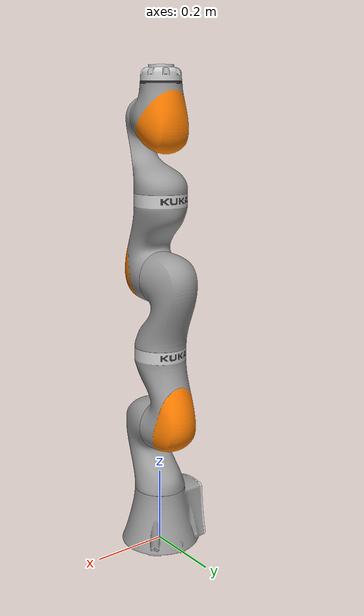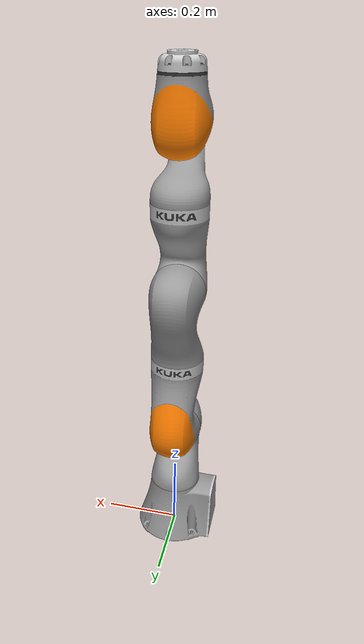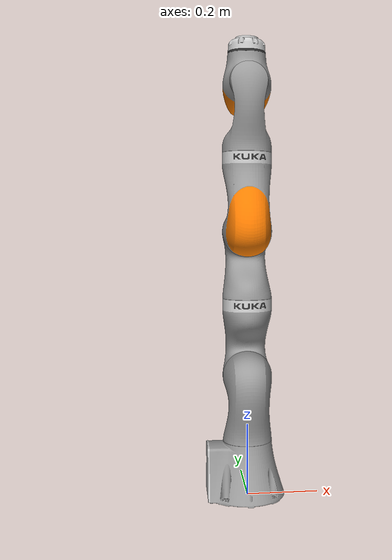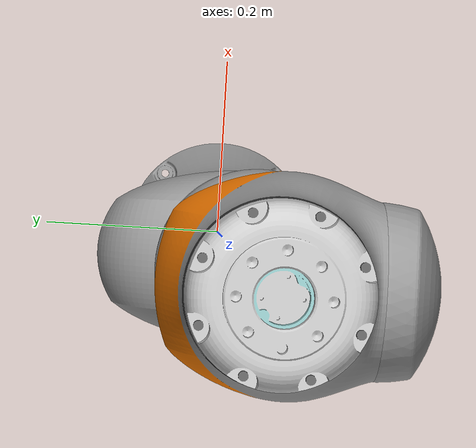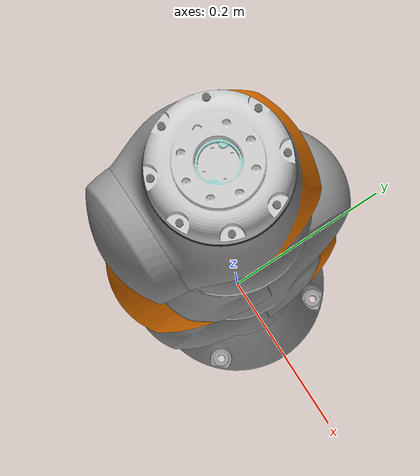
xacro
<?xml version="1.0"?>

<!-- top level -->
<robot name="iiwa7" xmlns:xacro="http://www.ros.org/wiki/xacro">

    <!-- include the iiwa macro and controller -->
    <xacro:include filename="$(find lbr_description)/urdf/iiwa7/iiwa7.urdf.xacro" />
    <xacro:include filename="$(find lbr_description)/gazebo/lbr_gazebo.xacro" />
    <xacro:include filename="$(find lbr_description)/ros2_control/lbr_system_interface.xacro" />

    <!-- arguments -->
    <xacro:arg name="robot_name" default="lbr" />
    <xacro:arg name="mode" default="mock" />
    <xacro:arg
        name="joint_limits_path"
        default="$(find lbr_description)/urdf/iiwa7/joint_limits.yaml" />
    <xacro:arg
        name="system_config_path"
        default="$(find lbr_description)/ros2_control/lbr_system_config.yaml" />
    <xacro:arg
        name="initial_joint_positions_path"
        default="$(find lbr_description)/ros2_control/initial_joint_positions.yaml" />

    <!-- KDL requires a link without inertia / Gazebo requires a connection to world link or robot
    will tipple https://github.com/lbr-stack/lbr_fri_ros2_stack/issues/230 -->
    <link name="world" />

    <joint name="$(arg robot_name)_world_joint" type="fixed">
        <parent link="world" />
        <child link="$(arg robot_name)_link_0" />
    </joint>

    <!-- macros for gazebo / mock / hardware -->
    <xacro:lbr_gazebo robot_name="$(arg robot_name)" />
    <xacro:lbr_system_interface
        robot_name="$(arg robot_name)"
        mode="$(arg mode)"
        system_config_path="$(arg system_config_path)"
        initial_joint_positions_path="$(arg initial_joint_positions_path)" />

    <!-- iiwa description -->
    <xacro:iiwa7
        robot_name="$(arg robot_name)"
        joint_limits_path="$(arg joint_limits_path)" />
</robot>

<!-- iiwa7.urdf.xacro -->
<robot xmlns:xacro="http://www.ros.org/wiki/xacro">
    <!-- robot as extracted via https://github.com/syuntoku14/fusion2urdf -->
    <xacro:macro name="iiwa7"
        params="robot_name:=^|lbr joint_limits_path:=^|'$(find lbr_description)/urdf/iiwa7/joint_limits.yaml'">

        <!-- load joint limits via yaml -->
        <xacro:property name="joint_limits" value="${xacro.load_yaml(joint_limits_path)}" />

        <!-- constants -->
        <xacro:property name="PI" value="3.1415926535897931" />
        <xacro:property name="joint_damping" value="10.0" />
        <xacro:property name="joint_friction" value="0.1" />

        <!-- links and joints -->
        <link name="${robot_name}_link_0">
            <inertial>
                <origin rpy="0 0 0" xyz="-0.012857 0.0 0.069964" />
                <mass value="4.855658" />
                <inertia ixx="0.017839" ixy="0.0" ixz="0.000781" iyy="0.022294" iyz="0.0"
                    izz="0.021334" />
            </inertial>
            <visual>
                <origin rpy="0 0 0" xyz="0 0 0" />
                <geometry>
                    <mesh filename="package://lbr_description/meshes/iiwa7/visual/link_0.dae" />
                </geometry>
            </visual>
            <collision>
                <origin rpy="0 0 0" xyz="0 0 0" />
                <geometry>
                    <mesh filename="package://lbr_description/meshes/iiwa7/collision/link_0.stl" />
                </geometry>
            </collision>
        </link>

        <joint name="${robot_name}_A1" type="revolute">
            <origin rpy="0 0 0" xyz="0.0 0.0 0.1475" />
            <parent link="${robot_name}_link_0" />
            <child link="${robot_name}_link_1" />
            <axis xyz="0.0 0.0 1.0" />
            <limit
                effort="${joint_limits['A1']['effort']}"
                lower="${joint_limits['A1']['lower'] * PI / 180}"
                upper="${joint_limits['A1']['upper'] * PI / 180}"
                velocity="${joint_limits['A1']['velocity'] * PI / 180}" />
            <safety_controller
                soft_lower_limit="${joint_limits['A1']['lower'] * PI / 180}"
                soft_upper_limit="${joint_limits['A1']['upper'] * PI / 180}"
                k_position="${joint_limits['A1']['velocity'] / joint_limits['A1']['safety_position_margin']}"
                k_velocity="${joint_limits['A1']['k_velocity']}" />
            <dynamics damping="${joint_damping}" friction="${joint_friction}" />
        </joint>

        <link name="${robot_name}_link_1">
            <inertial>
                <origin rpy="0 0 0" xyz="0.0 -0.034819 0.123299" />
                <mass value="3.394011" />
                <inertia ixx="0.021383" ixy="0.0" ixz="0.0" iyy="0.020403" iyz="0.003797"
                    izz="0.007563" />
            </inertial>
            <visual>
                <origin rpy="0 0 0" xyz="0.0 0.0 -0.1475" />
                <geometry>
                    <mesh filename="package://lbr_description/meshes/iiwa7/visual/link_1.dae" />
                </geometry>
            </visual>
            <collision>
                <origin rpy="0 0 0" xyz="0.0 0.0 -0.1475" />
                <geometry>
                    <mesh filename="package://lbr_description/meshes/iiwa7/collision/link_1.stl" />
                </geometry>
            </collision>
        </link>

        <joint name="${robot_name}_A2" type="revolute">
            <origin rpy="0 0 0" xyz="0.0 -0.0105 0.1925" />
            <parent link="${robot_name}_link_1" />
            <child link="${robot_name}_link_2" />
            <axis xyz="0.0 1.0 0.0" />
            <limit
                effort="${joint_limits['A2']['effort']}"
                lower="${joint_limits['A2']['lower'] * PI / 180}"
                upper="${joint_limits['A2']['upper'] * PI / 180}"
                velocity="${joint_limits['A2']['velocity'] * PI / 180}" />
            <safety_controller
                soft_lower_limit="${joint_limits['A2']['lower'] * PI / 180}"
                soft_upper_limit="${joint_limits['A2']['upper'] * PI / 180}"
                k_position="${joint_limits['A2']['velocity'] / joint_limits['A2']['safety_position_margin']}"
                k_velocity="${joint_limits['A2']['k_velocity']}" />
            <dynamics damping="${joint_damping}" friction="${joint_friction}" />
        </joint>

        <link name="${robot_name}_link_2">
            <inertial>
                <origin rpy="0 0 0" xyz="0.0 0.039793 0.086944" />
                <mass value="4.031991" />
                <inertia ixx="0.031697" ixy="0.0" ixz="0.0" iyy="0.03008" iyz="0.005889"
                    izz="0.009666" />
            </inertial>
            <visual>
                <origin rpy="0 0 0" xyz="0.0 0.0105 -0.34" />
                <geometry>
                    <mesh filename="package://lbr_description/meshes/iiwa7/visual/link_2.dae" />
                </geometry>
            </visual>
            <collision>
                <origin rpy="0 0 0" xyz="0.0 0.0105 -0.34" />
                <geometry>
                    <mesh filename="package://lbr_description/meshes/iiwa7/collision/link_2.stl" />
                </geometry>
            </collision>
        </link>

        <joint name="${robot_name}_A3" type="revolute">
            <origin rpy="0 0 0" xyz="0.0 0.0105 0.2075" />
            <parent link="${robot_name}_link_2" />
            <child link="${robot_name}_link_3" />
            <axis xyz="0.0 0.0 1.0" />
            <limit
                effort="${joint_limits['A3']['effort']}"
                lower="${joint_limits['A3']['lower'] * PI / 180}"
                upper="${joint_limits['A3']['upper'] * PI / 180}"
                velocity="${joint_limits['A3']['velocity'] * PI / 180}" />
            <safety_controller
                soft_lower_limit="${joint_limits['A3']['lower'] * PI / 180}"
                soft_upper_limit="${joint_limits['A3']['upper'] * PI / 180}"
                k_position="${joint_limits['A3']['velocity'] / joint_limits['A3']['safety_position_margin']}"
                k_velocity="${joint_limits['A3']['k_velocity']}" />
            <dynamics damping="${joint_damping}" friction="${joint_friction}" />
        </joint>

        <link name="${robot_name}_link_3">
            <inertial>
                <origin rpy="0 0 0" xyz="0.0 0.034819 0.123299" />
                <mass value="3.394011" />
                <inertia ixx="0.021383" ixy="0.0" ixz="0.0" iyy="0.020403" iyz="-0.003797"
                    izz="0.007563" />
            </inertial>
            <visual>
                <origin rpy="0 0 0" xyz="0.0 0.0 -0.5475" />
                <geometry>
                    <mesh filename="package://lbr_description/meshes/iiwa7/visual/link_3.dae" />
                </geometry>
            </visual>
            <collision>
                <origin rpy="0 0 0" xyz="0.0 0.0 -0.5475" />
                <geometry>
                    <mesh filename="package://lbr_description/meshes/iiwa7/collision/link_3.stl" />
                </geometry>
            </collision>
        </link>

        <joint name="${robot_name}_A4" type="revolute">
            <origin rpy="0 0 0" xyz="0.0 0.0105 0.1925" />
            <parent link="${robot_name}_link_3" />
            <child link="${robot_name}_link_4" />
            <axis xyz="0.0 -1.0 0.0" />
            <limit
                effort="${joint_limits['A4']['effort']}"
                lower="${joint_limits['A4']['lower'] * PI / 180}"
                upper="${joint_limits['A4']['upper'] * PI / 180}"
                velocity="${joint_limits['A4']['velocity'] * PI / 180}" />
            <safety_controller
                soft_lower_limit="${joint_limits['A4']['lower'] * PI / 180}"
                soft_upper_limit="${joint_limits['A4']['upper'] * PI / 180}"
                k_position="${joint_limits['A4']['velocity'] / joint_limits['A4']['safety_position_margin']}"
                k_velocity="${joint_limits['A4']['k_velocity']}" />
            <dynamics damping="${joint_damping}" friction="${joint_friction}" />
        </joint>

        <link name="${robot_name}_link_4">
            <inertial>
                <origin rpy="0 0 0" xyz="0.0 -0.039793 0.086944" />
                <mass value="4.031989" />
                <inertia ixx="0.031695" ixy="0.0" ixz="0.0" iyy="0.030079" iyz="-0.005889"
                    izz="0.009665" />
            </inertial>
            <visual>
                <origin rpy="0 0 0" xyz="0.0 -0.0105 -0.74" />
                <geometry>
                    <mesh filename="package://lbr_description/meshes/iiwa7/visual/link_4.dae" />
                </geometry>
            </visual>
            <collision>
                <origin rpy="0 0 0" xyz="0.0 -0.0105 -0.74" />
                <geometry>
                    <mesh filename="package://lbr_description/meshes/iiwa7/collision/link_4.stl" />
                </geometry>
            </collision>
        </link>

        <joint name="${robot_name}_A5" type="revolute">
            <origin rpy="0 0 0" xyz="0.0 -0.0105 0.2075" />
            <parent link="${robot_name}_link_4" />
            <child link="${robot_name}_link_5" />
            <axis xyz="0.0 0.0 1.0" />
            <limit
                effort="${joint_limits['A5']['effort']}"
                lower="${joint_limits['A5']['lower'] * PI / 180}"
                upper="${joint_limits['A5']['upper'] * PI / 180}"
                velocity="${joint_limits['A5']['velocity'] * PI / 180}" />
            <safety_controller
                soft_lower_limit="${joint_limits['A5']['lower'] * PI / 180}"
                soft_upper_limit="${joint_limits['A5']['upper'] * PI / 180}"
                k_position="${joint_limits['A5']['velocity'] / joint_limits['A5']['safety_position_margin']}"
                k_velocity="${joint_limits['A5']['k_velocity']}" />
            <dynamics damping="${joint_damping}" friction="${joint_friction}" />
        </joint>

        <link name="${robot_name}_link_5">
            <inertial>
                <origin rpy="0 0 0" xyz="0.0 -0.029824 0.076267" />
                <mass value="1.529239" />
                <inertia ixx="0.008485" ixy="0.0" ixz="0.0" iyy="0.007136" iyz="0.002806"
                    izz="0.003848" />
            </inertial>
            <visual>
                <origin rpy="0 0 0" xyz="0.0 0.0 -0.9475" />
                <geometry>
                    <mesh filename="package://lbr_description/meshes/iiwa7/visual/link_5.dae" />
                </geometry>
            </visual>
            <collision>
                <origin rpy="0 0 0" xyz="0.0 0.0 -0.9475" />
                <geometry>
                    <mesh filename="package://lbr_description/meshes/iiwa7/collision/link_5.stl" />
                </geometry>
            </collision>
        </link>

        <joint name="${robot_name}_A6" type="revolute">
            <origin rpy="0 0 0" xyz="0.0 -0.0707 0.1925" />
            <parent link="${robot_name}_link_5" />
            <child link="${robot_name}_link_6" />
            <axis xyz="0.0 1.0 0.0" />
            <limit
                effort="${joint_limits['A6']['effort']}"
                lower="${joint_limits['A6']['lower'] * PI / 180}"
                upper="${joint_limits['A6']['upper'] * PI / 180}"
                velocity="${joint_limits['A6']['velocity'] * PI / 180}" />
            <safety_controller
                soft_lower_limit="${joint_limits['A6']['lower'] * PI / 180}"
                soft_upper_limit="${joint_limits['A6']['upper'] * PI / 180}"
                k_position="${joint_limits['A6']['velocity'] / joint_limits['A6']['safety_position_margin']}"
                k_velocity="${joint_limits['A6']['k_velocity']}" />
            <dynamics damping="${joint_damping}" friction="${joint_friction}" />
        </joint>

        <link name="${robot_name}_link_6">
            <inertial>
                <origin rpy="0 0 0" xyz="0.0 0.07102 0.00495" />
                <mass value="2.403626" />
                <inertia ixx="0.007067" ixy="0.0" ixz="0.0" iyy="0.006804" iyz="0.000311"
                    izz="0.004629" />
            </inertial>
            <visual>
                <origin rpy="0 0 0" xyz="0.0 0.0707 -1.14" />
                <geometry>
                    <mesh filename="package://lbr_description/meshes/iiwa7/visual/link_6.dae" />
                </geometry>
            </visual>
            <collision>
                <origin rpy="0 0 0" xyz="0.0 0.0707 -1.14" />
                <geometry>
                    <mesh filename="package://lbr_description/meshes/iiwa7/collision/link_6.stl" />
                </geometry>
            </collision>
        </link>

        <joint name="${robot_name}_A7" type="revolute">
            <origin rpy="0 0 0" xyz="0.0 0.0707 0.091" />
            <parent link="${robot_name}_link_6" />
            <child link="${robot_name}_link_7" />
            <axis xyz="0.0 0.0 1.0" />
            <limit
                effort="${joint_limits['A7']['effort']}"
                lower="${joint_limits['A7']['lower'] * PI / 180}"
                upper="${joint_limits['A7']['upper'] * PI / 180}"
                velocity="${joint_limits['A7']['velocity'] * PI / 180}" />
            <safety_controller
                soft_lower_limit="${joint_limits['A7']['lower'] * PI / 180}"
                soft_upper_limit="${joint_limits['A7']['upper'] * PI / 180}"
                k_position="${joint_limits['A7']['velocity'] / joint_limits['A7']['safety_position_margin']}"
                k_velocity="${joint_limits['A7']['k_velocity']}" />
            <dynamics damping="${joint_damping}" friction="${joint_friction}" />
        </joint>

        <link name="${robot_name}_link_7">
            <inertial>
                <origin rpy="0 0 0" xyz="3.0000e-06 -2.0000e-06 1.3782e-02" />
                <mass value="0.259474" />
                <inertia ixx="0.000171" ixy="0.0" ixz="0.0" iyy="0.000171" iyz="0.0" izz="0.000299" />
            </inertial>
            <visual>
                <origin rpy="0 0 0" xyz="0.0 0.0 -1.231" />
                <geometry>
                    <mesh filename="package://lbr_description/meshes/iiwa7/visual/link_7.dae" />
                </geometry>
            </visual>
            <collision>
                <origin rpy="0 0 0" xyz="0.0 0.0 -1.231" />
                <geometry>
                    <mesh filename="package://lbr_description/meshes/iiwa7/collision/link_7.stl" />
                </geometry>
            </collision>
        </link>

        <joint name="${robot_name}_joint_ee" type="fixed">
            <parent link="${robot_name}_link_7" />
            <child link="${robot_name}_link_ee" />
            <origin xyz="0 0 0.035" rpy="0 0 0" />
        </joint>

        <link name="${robot_name}_link_ee">
        </link>
    </xacro:macro>
</robot>
